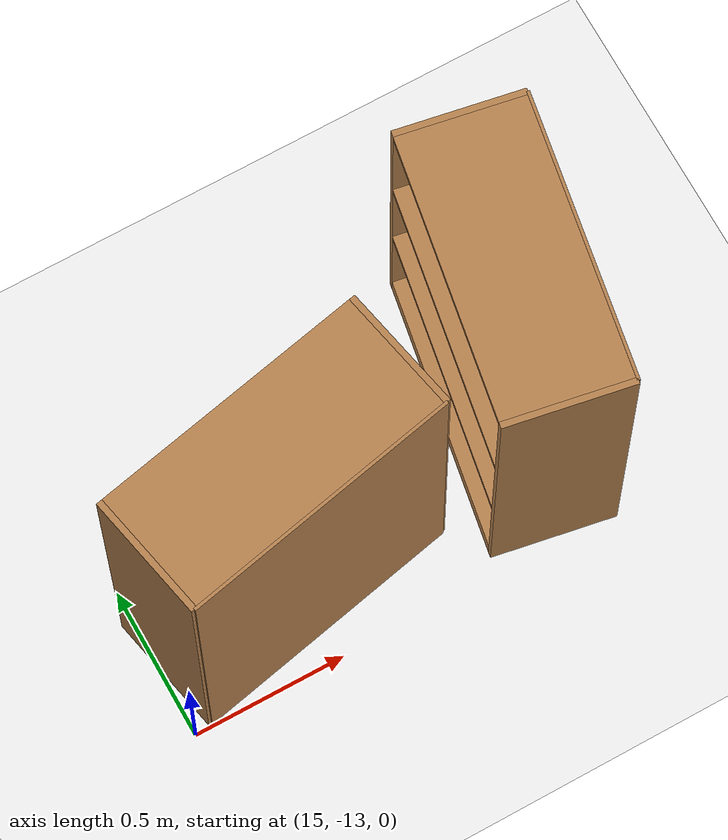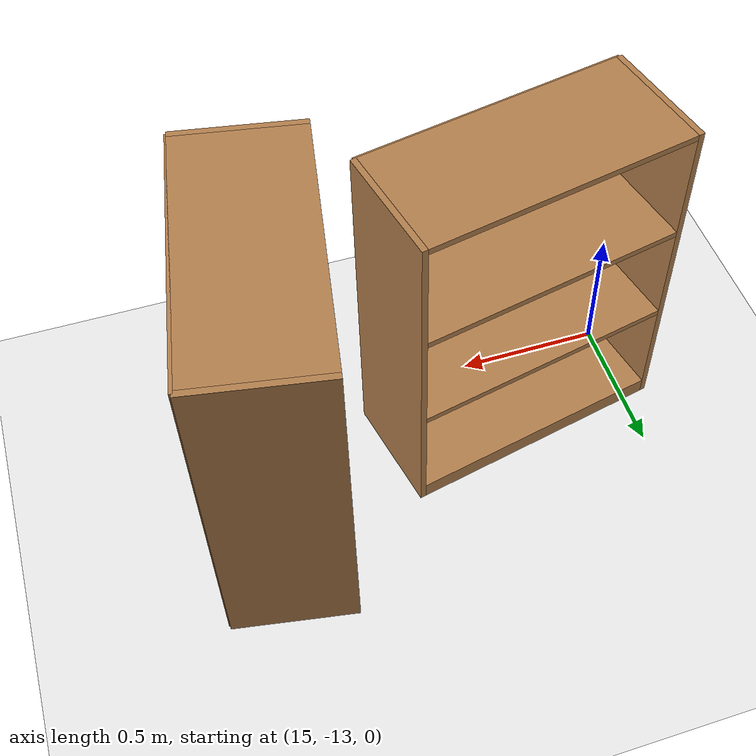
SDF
<sdf version="1.6">
 <world name="default">
  <scene><ambient>210 210 210 1</ambient><background>0.25 0.25 0.25 1</background><shadows>0</shadows></scene>
  <light name="directional_light" type="directional">
   <diffuse>0.7 0.7 0.7 0</diffuse>
   <specular>0.1 0.1 0.1 0</specular>
   <direction>-1 -1 -1</direction>
  </light>
  <gravity>0 0 -9.8</gravity>
  <magnetic_field>6e-06 2.3e-05 -4.2e-05</magnetic_field>
  <atmosphere type="adiabatic"/>
  <physics name="default_physics" default="0" type="ode">
   <max_step_size>0.001</max_step_size>
   <real_time_factor>1</real_time_factor>
   <real_time_update_rate>1000</real_time_update_rate>
  </physics>
  <spherical_coordinates>
   <surface_model>EARTH_WGS84</surface_model>
   <latitude_deg>0</latitude_deg>
   <longitude_deg>0</longitude_deg>
   <elevation>0</elevation>
   <heading_deg>0</heading_deg>
  </spherical_coordinates>
  <model name="ground_plane">
   <static>1</static>
   <link name="link">
    <collision name="collision">
     <geometry><plane><normal>0 0 1</normal><size>100 100</size></plane></geometry>
     <surface><friction><ode><mu>100</mu><mu2>100</mu2></ode></friction></surface>
    </collision>
    <visual name="visual">
     <cast_shadows>0</cast_shadows>
     <geometry><plane><normal>0 0 1</normal><size>100 100</size></plane></geometry>
     <material>
      <script><uri>file://media/materials/scripts/gazebo.material</uri><name>Gazebo/White</name></script>
     </material>
    </visual>
   </link>
  </model>
  <model name="bookshelf">
   <static>1</static>
   <link name="link">
    <inertial><mass>1</mass></inertial>
    <collision name="back">
     <pose>0 0.005 0.6 0 -0 0</pose>
     <geometry><box><size>0.9 0.01 1.2</size></box></geometry>
    </collision>
    <visual name="visual1">
     <pose>0 0.005 0.6 0 -0 0</pose>
     <geometry><box><size>0.9 0.01 1.2</size></box></geometry>
     <material>
      <script><uri>file://media/materials/scripts/gazebo.material</uri><name>Gazebo/Wood</name></script>
     </material>
    </visual>
    <collision name="left_side">
     <pose>0.45 -0.195 0.6 0 -0 0</pose>
     <geometry><box><size>0.02 0.4 1.2</size></box></geometry>
    </collision>
    <visual name="visual2">
     <pose>0.45 -0.195 0.6 0 -0 0</pose>
     <geometry><box><size>0.02 0.4 1.2</size></box></geometry>
     <material>
      <script><uri>file://media/materials/scripts/gazebo.material</uri><name>Gazebo/Wood</name></script>
     </material>
    </visual>
    <collision name="right_side">
     <pose>-0.45 -0.195 0.6 0 -0 0</pose>
     <geometry><box><size>0.02 0.4 1.2</size></box></geometry>
    </collision>
    <visual name="visual3">
     <pose>-0.45 -0.195 0.6 0 -0 0</pose>
     <geometry><box><size>0.02 0.4 1.2</size></box></geometry>
     <material>
      <script><uri>file://media/materials/scripts/gazebo.material</uri><name>Gazebo/Wood</name></script>
     </material>
    </visual>
    <collision name="bottom">
     <pose>0 -0.195 0.03 0 -0 0</pose>
     <geometry><box><size>0.88 0.4 0.06</size></box></geometry>
    </collision>
    <visual name="visual4">
     <pose>0 -0.195 0.03 0 -0 0</pose>
     <geometry><box><size>0.88 0.4 0.06</size></box></geometry>
     <material>
      <script><uri>file://media/materials/scripts/gazebo.material</uri><name>Gazebo/Wood</name></script>
     </material>
    </visual>
    <collision name="top">
     <pose>0 -0.195 1.19 0 -0 0</pose>
     <geometry><box><size>0.88 0.4 0.02</size></box></geometry>
    </collision>
    <visual name="visual5">
     <pose>0 -0.195 1.19 0 -0 0</pose>
     <geometry><box><size>0.88 0.4 0.02</size></box></geometry>
     <material>
      <script><uri>file://media/materials/scripts/gazebo.material</uri><name>Gazebo/Wood</name></script>
     </material>
    </visual>
    <collision name="low_shelf">
     <pose>0 -0.195 0.43 0 -0 0</pose>
     <geometry><box><size>0.88 0.4 0.02</size></box></geometry>
    </collision>
    <visual name="visual6">
     <pose>0 -0.195 0.43 0 -0 0</pose>
     <geometry><box><size>0.88 0.4 0.02</size></box></geometry>
     <material>
      <script><uri>file://media/materials/scripts/gazebo.material</uri><name>Gazebo/Wood</name></script>
     </material>
    </visual>
    <collision name="high_shelf">
     <pose>0 -0.195 0.8 0 -0 0</pose>
     <geometry><box><size>0.88 0.4 0.02</size></box></geometry>
    </collision>
    <visual name="visual7">
     <pose>0 -0.195 0.8 0 -0 0</pose>
     <geometry><box><size>0.88 0.4 0.02</size></box></geometry>
     <material>
      <script><uri>file://media/materials/scripts/gazebo.material</uri><name>Gazebo/Wood</name></script>
     </material>
    </visual>
   </link>
   <pose>16.4772 -12.6019 0.153947 0 0 -1.74849</pose>
  </model>
  <model name="bookshelf_0">
   <static>1</static>
   <link name="link">
    <inertial><mass>1</mass></inertial>
    <collision name="back">
     <pose>0 0.005 0.6 0 -0 0</pose>
     <geometry><box><size>0.9 0.01 1.2</size></box></geometry>
    </collision>
    <visual name="visual1">
     <pose>0 0.005 0.6 0 -0 0</pose>
     <geometry><box><size>0.9 0.01 1.2</size></box></geometry>
     <material>
      <script><uri>file://media/materials/scripts/gazebo.material</uri><name>Gazebo/Wood</name></script>
     </material>
    </visual>
    <collision name="left_side">
     <pose>0.45 -0.195 0.6 0 -0 0</pose>
     <geometry><box><size>0.02 0.4 1.2</size></box></geometry>
    </collision>
    <visual name="visual2">
     <pose>0.45 -0.195 0.6 0 -0 0</pose>
     <geometry><box><size>0.02 0.4 1.2</size></box></geometry>
     <material>
      <script><uri>file://media/materials/scripts/gazebo.material</uri><name>Gazebo/Wood</name></script>
     </material>
    </visual>
    <collision name="right_side">
     <pose>-0.45 -0.195 0.6 0 -0 0</pose>
     <geometry><box><size>0.02 0.4 1.2</size></box></geometry>
    </collision>
    <visual name="visual3">
     <pose>-0.45 -0.195 0.6 0 -0 0</pose>
     <geometry><box><size>0.02 0.4 1.2</size></box></geometry>
     <material>
      <script><uri>file://media/materials/scripts/gazebo.material</uri><name>Gazebo/Wood</name></script>
     </material>
    </visual>
    <collision name="bottom">
     <pose>0 -0.195 0.03 0 -0 0</pose>
     <geometry><box><size>0.88 0.4 0.06</size></box></geometry>
    </collision>
    <visual name="visual4">
     <pose>0 -0.195 0.03 0 -0 0</pose>
     <geometry><box><size>0.88 0.4 0.06</size></box></geometry>
     <material>
      <script><uri>file://media/materials/scripts/gazebo.material</uri><name>Gazebo/Wood</name></script>
     </material>
    </visual>
    <collision name="top">
     <pose>0 -0.195 1.19 0 -0 0</pose>
     <geometry><box><size>0.88 0.4 0.02</size></box></geometry>
    </collision>
    <visual name="visual5">
     <pose>0 -0.195 1.19 0 -0 0</pose>
     <geometry><box><size>0.88 0.4 0.02</size></box></geometry>
     <material>
      <script><uri>file://media/materials/scripts/gazebo.material</uri><name>Gazebo/Wood</name></script>
     </material>
    </visual>
    <collision name="low_shelf">
     <pose>0 -0.195 0.43 0 -0 0</pose>
     <geometry><box><size>0.88 0.4 0.02</size></box></geometry>
    </collision>
    <visual name="visual6">
     <pose>0 -0.195 0.43 0 -0 0</pose>
     <geometry><box><size>0.88 0.4 0.02</size></box></geometry>
     <material>
      <script><uri>file://media/materials/scripts/gazebo.material</uri><name>Gazebo/Wood</name></script>
     </material>
    </visual>
    <collision name="high_shelf">
     <pose>0 -0.195 0.8 0 -0 0</pose>
     <geometry><box><size>0.88 0.4 0.02</size></box></geometry>
    </collision>
    <visual name="visual7">
     <pose>0 -0.195 0.8 0 -0 0</pose>
     <geometry><box><size>0.88 0.4 0.02</size></box></geometry>
     <material>
      <script><uri>file://media/materials/scripts/gazebo.material</uri><name>Gazebo/Wood</name></script>
     </material>
    </visual>
   </link>
   <pose>15.4858 -12.9214 0.111581 0 0 -2.93604</pose>
  </model>
 </world>
</sdf>
